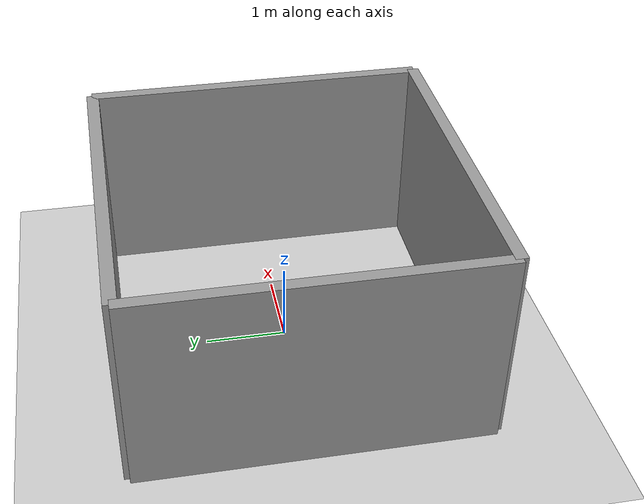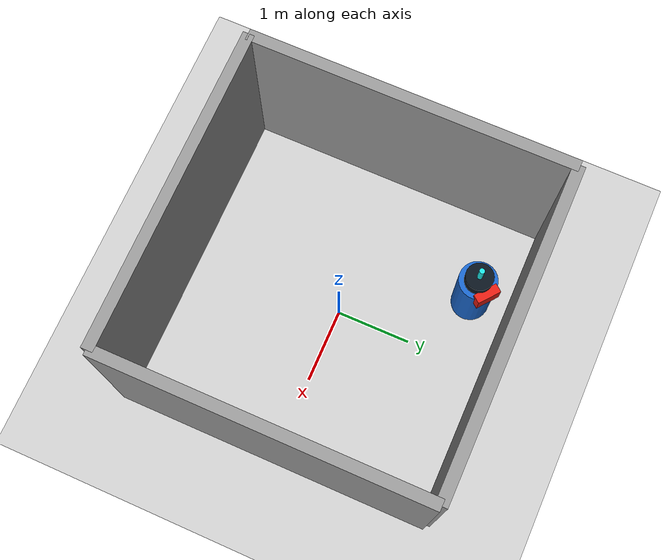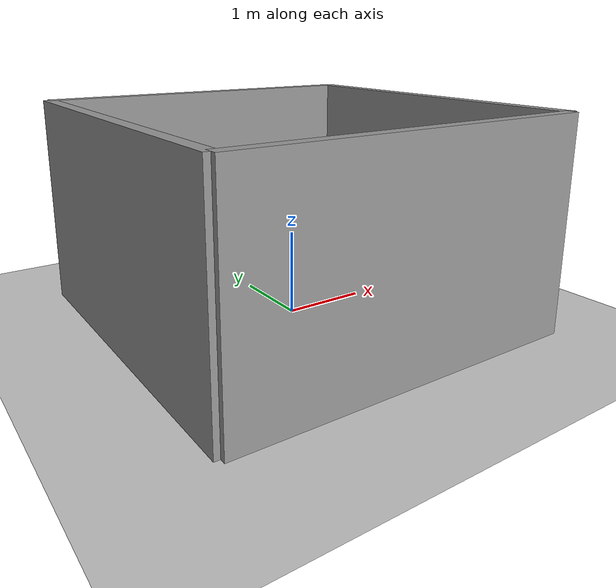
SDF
<?xml version='1.0'?>
<sdf version='1.7'>
  <world name='default'>
    <gui>
      <camera name='user_camera'>
        <pose>-3.0390498495816135e-25 2.220446049250313e-16 11.831748958280624 1.5707963254262305 1.5707963267948966 0</pose>
        <view_controller>orbit</view_controller>
        <projection_type>perspective</projection_type>
      </camera>
    </gui>
    <plugin name="socnav_plugin" filename="libSocNavPlugin.so">
      <robot_name>robot</robot_name>
      <trajectory_file>/home/hunav_gz_classic_ws/SocNav3_trajectories/src6/000003840.json</trajectory_file>
      <human_slots>0</human_slots>
      <goal_angle_mesh>
        <angle_threshold>0.161824969332</angle_threshold>
        <uri>/home/hunav_gz_classic_ws/src/socnav_gazebo_reproducer/meshes/000003840_goal_angle_00.stl</uri>
      </goal_angle_mesh>

    </plugin>
    <light name='sun' type='directional'>
      <cast_shadows>1</cast_shadows>
      <pose>0 0 10 0 -0 0</pose>
      <diffuse>0.8 0.8 0.8 1</diffuse>
      <specular>0.2 0.2 0.2 1</specular>
      <attenuation>
        <range>1000</range>
        <constant>0.9</constant>
        <linear>0.01</linear>
        <quadratic>0.001</quadratic>
      </attenuation>
      <direction>-0.5 0.1 -0.9</direction>
      <spot>
        <inner_angle>0</inner_angle>
        <outer_angle>0</outer_angle>
        <falloff>0</falloff>
      </spot>
    </light>
    <model name='ground_plane'>
      <static>1</static>
      <link name='link'>
        <collision name='collision'>
          <geometry>
            <plane>
              <normal>0 0 1</normal>
              <size>100 100</size>
            </plane>
          </geometry>
          <surface>
            <friction>
              <ode>
                <mu>100</mu>
                <mu2>50</mu2>
              </ode>
              <torsional>
                <ode/>
              </torsional>
            </friction>
            <contact>
              <ode/>
            </contact>
            <bounce/>
          </surface>
          <max_contacts>10</max_contacts>
        </collision>
        <visual name='visual'>
          <cast_shadows>0</cast_shadows>
          <geometry>
            <plane>
              <normal>0 0 1</normal>
              <size>100 100</size>
            </plane>
          </geometry>
          <material>
            <script>
              <uri>file://media/materials/scripts/kitchen.material</uri>
              <name>Kitchen/CounterTop_H</name>
            </script>
          </material>
        </visual>
        <self_collide>0</self_collide>
        <enable_wind>0</enable_wind>
        <kinematic>0</kinematic>
      </link>
    </model>
    <gravity>0 0 -9.8</gravity>
    <magnetic_field>6e-06 2.3e-05 -4.2e-05</magnetic_field>
    <atmosphere type='adiabatic'/>
    <physics type='ode'>
      <max_step_size>0.001</max_step_size>
      <real_time_factor>1</real_time_factor>
      <real_time_update_rate>1000</real_time_update_rate>
    </physics>
    <scene>
      <ambient>0.4 0.4 0.4 1</ambient>
      <background>0.7 0.7 0.7 1</background>
      <shadows>1</shadows>
    </scene>
    <audio>
      <device>default</device>
    </audio>
    <wind/>
    <spherical_coordinates>
      <surface_model>EARTH_WGS84</surface_model>
      <latitude_deg>0</latitude_deg>
      <longitude_deg>0</longitude_deg>
      <elevation>0</elevation>
      <heading_deg>0</heading_deg>
    </spherical_coordinates>
    <model name='robot'>
      <pose>-0.8435946061946378 1.5436750463484918 0.5 0 0 0.897605556878617</pose>
      <link name='link'>
        <collision name='collision'>
          <geometry>
            <cylinder>
              <radius>0.25282451242188947</radius>
              <length>1.0</length>
            </cylinder>
          </geometry>
        </collision>
        <visual name='visual'>
          <geometry>
            <cylinder>
              <radius>0.25282451242188947</radius>
              <length>1.0</length>
            </cylinder>
          </geometry>
          <material>
            <ambient>0.1 0.4 0.8 1</ambient>
            <diffuse>0.1 0.4 0.8 1</diffuse>
          </material>
        </visual>
        <visual name='robot_top'>
          <pose>0 0 0.58 0 0 0</pose>
          <geometry><cylinder><radius>0.18203364894376042</radius><length>0.16</length></cylinder></geometry>
          <material><ambient>0.04 0.08 0.12 1</ambient><diffuse>0.04 0.08 0.12 1</diffuse></material>
        </visual>
        <visual name='robot_front'>
          <pose>0.21237259043438714 0 0.44 0 0 0</pose>
          <geometry><box><size>0.12135576596250694 0.32361537590001854 0.24</size></box></geometry>
          <material><ambient>0.9 0.12 0.08 1</ambient><diffuse>0.9 0.12 0.08 1</diffuse></material>
        </visual>
        <visual name='robot_sensor'>
          <pose>0 0 0.78 0 0 0</pose>
          <geometry><cylinder><radius>0.03539543173906453</radius><length>0.24</length></cylinder></geometry>
          <material><ambient>0.1 0.9 0.9 1</ambient><diffuse>0.1 0.9 0.9 1</diffuse></material>
        </visual>
      </link>
    </model>
    <model name='simple_world_test'>
      <pose>0 0 0 0 -0 0</pose>
      <link name='Wall_0'>
        <collision name='Wall_0_Collision'>
          <geometry>
            <box>
              <size>4.232422105520682 0.15 2.5</size>
            </box>
          </geometry>
          <pose>0 0 1.25 0 -0 0</pose>
          <max_contacts>10</max_contacts>
          <surface>
            <contact>
              <ode/>
            </contact>
            <bounce/>
            <friction>
              <torsional>
                <ode/>
              </torsional>
              <ode/>
            </friction>
          </surface>
        </collision>
        <visual name='Wall_0_Visual'>
          <pose>0 0 1.25 0 -0 0</pose>
          <geometry>
            <box>
              <size>4.232422105520682 0.15 2.5</size>
            </box>
          </geometry>
          <material>
            <script>
              <uri>file://media/materials/scripts/gazebo.material</uri>
              <name>Gazebo/Grey</name>
            </script>
            <ambient>1 1 1 1</ambient>
          </material>
          <meta>
            <layer>0</layer>
          </meta>
        </visual>
        <pose>2.106211052760341 0.0 0 0 -0 -1.5707963267948966</pose>
        <self_collide>0</self_collide>
        <enable_wind>0</enable_wind>
        <kinematic>0</kinematic>
      </link>
      <link name='Wall_1'>
        <collision name='Wall_1_Collision'>
          <geometry>
            <box>
              <size>4.232422105520682 0.15 2.5</size>
            </box>
          </geometry>
          <pose>0 0 1.25 0 -0 0</pose>
          <max_contacts>10</max_contacts>
          <surface>
            <contact>
              <ode/>
            </contact>
            <bounce/>
            <friction>
              <torsional>
                <ode/>
              </torsional>
              <ode/>
            </friction>
          </surface>
        </collision>
        <visual name='Wall_1_Visual'>
          <pose>0 0 1.25 0 -0 0</pose>
          <geometry>
            <box>
              <size>4.232422105520682 0.15 2.5</size>
            </box>
          </geometry>
          <material>
            <script>
              <uri>file://media/materials/scripts/gazebo.material</uri>
              <name>Gazebo/Grey</name>
            </script>
            <ambient>1 1 1 1</ambient>
          </material>
          <meta>
            <layer>0</layer>
          </meta>
        </visual>
        <pose>0.0 -2.106211052760341 0 0 -0 -3.141592653589793</pose>
        <self_collide>0</self_collide>
        <enable_wind>0</enable_wind>
        <kinematic>0</kinematic>
      </link>
      <link name='Wall_2'>
        <collision name='Wall_2_Collision'>
          <geometry>
            <box>
              <size>4.232422105520682 0.15 2.5</size>
            </box>
          </geometry>
          <pose>0 0 1.25 0 -0 0</pose>
          <max_contacts>10</max_contacts>
          <surface>
            <contact>
              <ode/>
            </contact>
            <bounce/>
            <friction>
              <torsional>
                <ode/>
              </torsional>
              <ode/>
            </friction>
          </surface>
        </collision>
        <visual name='Wall_2_Visual'>
          <pose>0 0 1.25 0 -0 0</pose>
          <geometry>
            <box>
              <size>4.232422105520682 0.15 2.5</size>
            </box>
          </geometry>
          <material>
            <script>
              <uri>file://media/materials/scripts/gazebo.material</uri>
              <name>Gazebo/Grey</name>
            </script>
            <ambient>1 1 1 1</ambient>
          </material>
          <meta>
            <layer>0</layer>
          </meta>
        </visual>
        <pose>-2.106211052760341 0.0 0 0 -0 1.5707963267948966</pose>
        <self_collide>0</self_collide>
        <enable_wind>0</enable_wind>
        <kinematic>0</kinematic>
      </link>
      <link name='Wall_3'>
        <collision name='Wall_3_Collision'>
          <geometry>
            <box>
              <size>4.232422105520682 0.15 2.5</size>
            </box>
          </geometry>
          <pose>0 0 1.25 0 -0 0</pose>
          <max_contacts>10</max_contacts>
          <surface>
            <contact>
              <ode/>
            </contact>
            <bounce/>
            <friction>
              <torsional>
                <ode/>
              </torsional>
              <ode/>
            </friction>
          </surface>
        </collision>
        <visual name='Wall_3_Visual'>
          <pose>0 0 1.25 0 -0 0</pose>
          <geometry>
            <box>
              <size>4.232422105520682 0.15 2.5</size>
            </box>
          </geometry>
          <material>
            <script>
              <uri>file://media/materials/scripts/gazebo.material</uri>
              <name>Gazebo/Grey</name>
            </script>
            <ambient>1 1 1 1</ambient>
          </material>
          <meta>
            <layer>0</layer>
          </meta>
        </visual>
        <pose>0.0 2.106211052760341 0 0 -0 0.0</pose>
        <self_collide>0</self_collide>
        <enable_wind>0</enable_wind>
        <kinematic>0</kinematic>
      </link>
      <static>1</static>
    </model>
  </world>
</sdf>
